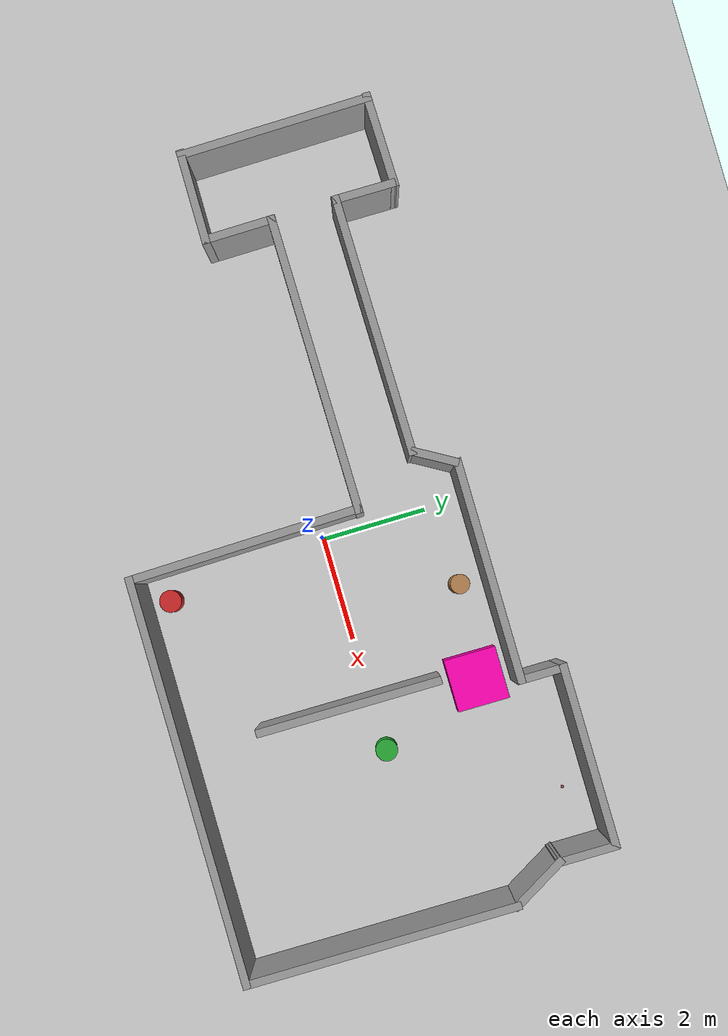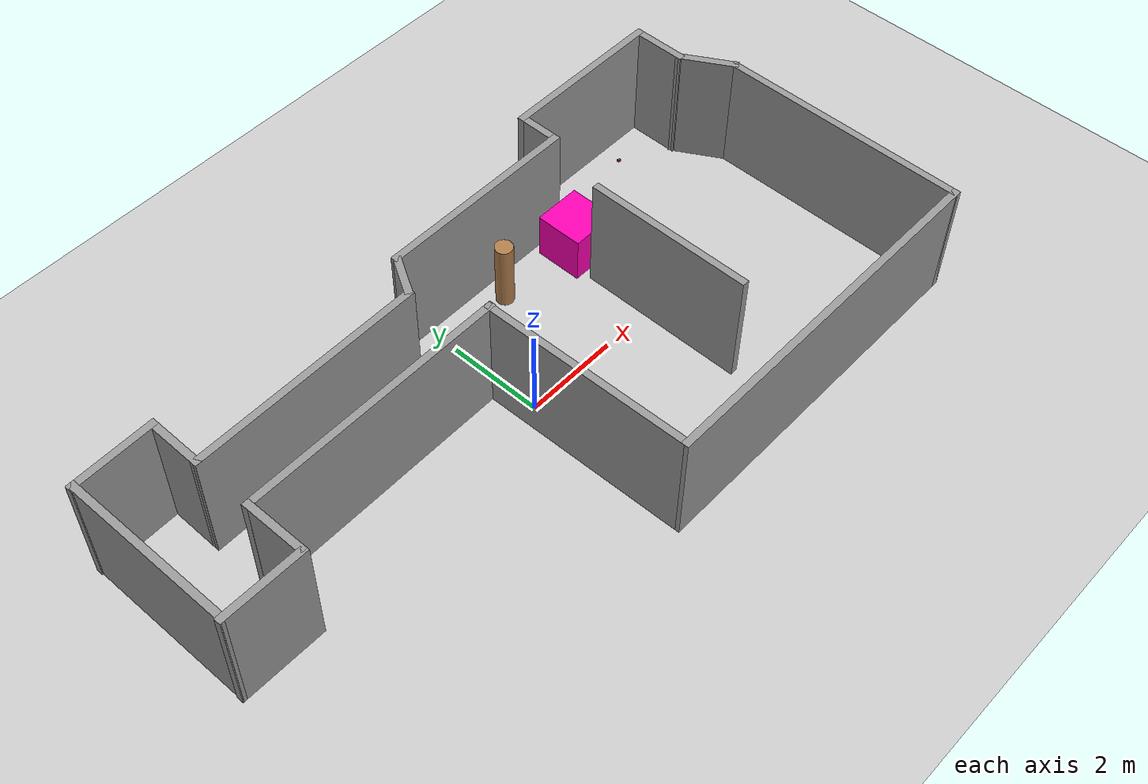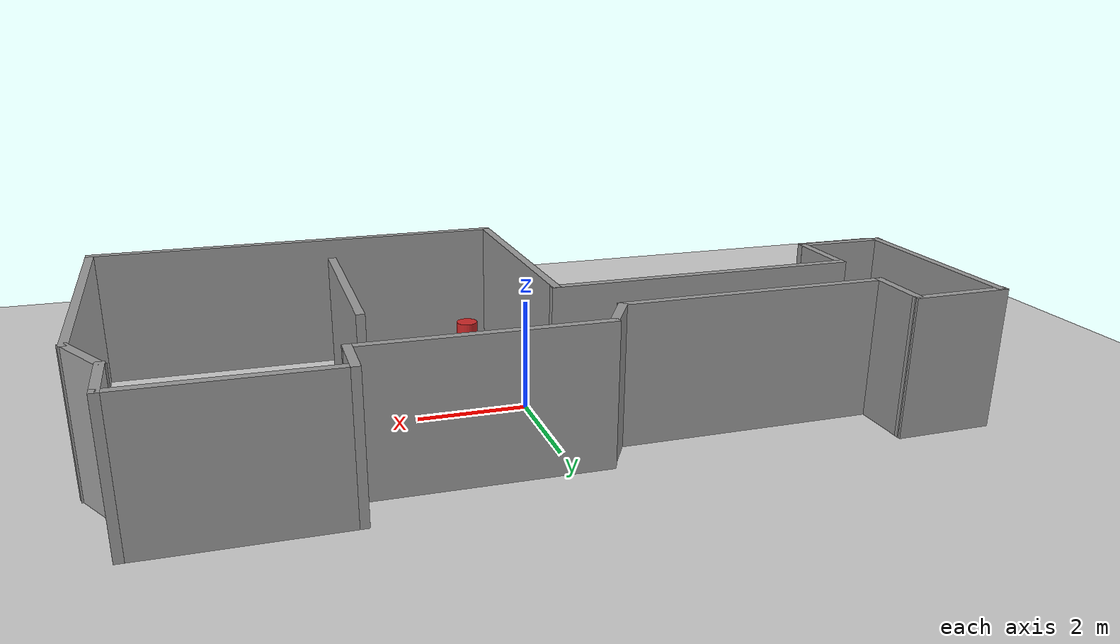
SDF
<sdf version="1.7">
 <world name="default">
  <model name="ground_plane">
   <static>1</static>
   <link name="link">
    <collision name="collision">
     <geometry><plane><normal>0 0 1</normal><size>100 100</size></plane></geometry>
     <surface><friction><ode><mu>100</mu><mu2>50</mu2></ode></friction></surface>
    </collision>
    <visual name="visual">
     <cast_shadows>0</cast_shadows>
     <geometry><plane><normal>0 0 1</normal><size>100 100</size></plane></geometry>
     <material>
      <script><uri>file://media/materials/scripts/gazebo.material</uri><name>Gazebo/Grey</name></script>
     </material>
    </visual>
   </link>
  </model>
  <model name="room_walls">
   <link name="Wall_1">
    <collision name="Wall_1_Collision">
     <geometry><box><size>1.2 0.15 2.5</size></box></geometry>
     <pose>0 0 1.25 0 -0 0</pose>
    </collision>
    <visual name="Wall_1_Visual">
     <pose>0 0 1.25 0 -0 0</pose>
     <geometry><box><size>1.2 0.15 2.5</size></box></geometry>
     <material>
      <script><uri>file://media/materials/scripts/gazebo.material</uri><name>Gazebo/Grey</name></script>
      <ambient>1 1 1 1</ambient>
     </material>
     <meta><layer>0</layer></meta>
    </visual>
    <pose>-5.79107 2.49368 0 0 -0 1.5708</pose>
   </link>
   <link name="Wall_2">
    <collision name="Wall_2_Collision">
     <geometry><box><size>1.79256 0.15 2.5</size></box></geometry>
     <pose>0 0 1.25 0 -0 0</pose>
    </collision>
    <visual name="Wall_2_Visual">
     <pose>0 0 1.25 0 -0 0</pose>
     <geometry><box><size>1.79256 0.15 2.5</size></box></geometry>
     <material>
      <script><uri>file://media/materials/scripts/gazebo.material</uri><name>Gazebo/Grey</name></script>
      <ambient>1 1 1 1</ambient>
     </material>
     <meta><layer>0</layer></meta>
    </visual>
    <pose>-6.61216 3.04631 0 0 -0 -3.1203</pose>
   </link>
   <link name="Wall_3">
    <collision name="Wall_3_Collision">
     <geometry><box><size>3.68565 0.15 2.5</size></box></geometry>
     <pose>0 0 1.25 0 -0 0</pose>
    </collision>
    <visual name="Wall_3_Visual">
     <pose>0 0 1.25 0 -0 0</pose>
     <geometry><box><size>3.68565 0.15 2.5</size></box></geometry>
     <material>
      <script><uri>file://media/materials/scripts/gazebo.material</uri><name>Gazebo/Grey</name></script>
      <ambient>1 1 1 1</ambient>
     </material>
     <meta><layer>0</layer></meta>
    </visual>
    <pose>-7.38434 1.26123 0 0 -0 -1.5545</pose>
   </link>
   <link name="Wall_4">
    <collision name="Wall_4_Collision">
     <geometry><box><size>1.77744 0.15 2.5</size></box></geometry>
     <pose>0 0 1.25 0 -0 0</pose>
    </collision>
    <visual name="Wall_4_Visual">
     <pose>0 0 1.25 0 -0 0</pose>
     <geometry><box><size>1.77744 0.15 2.5</size></box></geometry>
     <material>
      <script><uri>file://media/materials/scripts/gazebo.material</uri><name>Gazebo/Grey</name></script>
      <ambient>1 1 1 1</ambient>
     </material>
     <meta><layer>0</layer></meta>
    </visual>
    <pose>-6.56193 -0.508986 0 0 -0 -0.003224</pose>
   </link>
   <link name="Wall_5">
    <collision name="Wall_5_Collision">
     <geometry><box><size>1.35672 0.15 2.5</size></box></geometry>
     <pose>0 0 1.25 0 -0 0</pose>
    </collision>
    <visual name="Wall_5_Visual">
     <pose>0 0 1.25 0 -0 0</pose>
     <geometry><box><size>1.35672 0.15 2.5</size></box></geometry>
     <material>
      <script><uri>file://media/materials/scripts/gazebo.material</uri><name>Gazebo/Grey</name></script>
      <ambient>1 1 1 1</ambient>
     </material>
     <meta><layer>0</layer></meta>
    </visual>
    <pose>-5.75827 0.136795 0 0 -0 1.5846</pose>
   </link>
   <link name="Wall_6">
    <collision name="Wall_6_Collision">
     <geometry><box><size>5.64664 0.15 2.5</size></box></geometry>
     <pose>0 0 1.25 0 -0 0</pose>
    </collision>
    <visual name="Wall_6_Visual">
     <pose>0 0 1.25 0 -0 0</pose>
     <geometry><box><size>5.64664 0.15 2.5</size></box></geometry>
     <material>
      <script><uri>file://media/materials/scripts/gazebo.material</uri><name>Gazebo/Grey</name></script>
      <ambient>1 1 1 1</ambient>
     </material>
     <meta><layer>0</layer></meta>
    </visual>
    <pose>-3.02009 0.766397 0 0 -0 0.007796</pose>
   </link>
   <link name="Wall_7">
    <collision name="Wall_7_Collision">
     <geometry><box><size>4.38998 0.15 2.5</size></box></geometry>
     <pose>0 0 1.25 0 -0 0</pose>
    </collision>
    <visual name="Wall_7_Visual">
     <pose>0 0 1.25 0 -0 0</pose>
     <geometry><box><size>4.38998 0.15 2.5</size></box></geometry>
     <material>
      <script><uri>file://media/materials/scripts/gazebo.material</uri><name>Gazebo/Grey</name></script>
      <ambient>1 1 1 1</ambient>
     </material>
     <meta><layer>0</layer></meta>
    </visual>
    <pose>-0.242291 -1.34162 0 0 -0 -1.54891</pose>
   </link>
   <link name="Wall_8">
    <collision name="Wall_8_Collision">
     <geometry><box><size>7.75 0.15 2.5</size></box></geometry>
     <pose>0 0 1.25 0 -0 0</pose>
    </collision>
    <visual name="Wall_8_Visual">
     <pose>0 0 1.25 0 -0 0</pose>
     <geometry><box><size>7.75 0.15 2.5</size></box></geometry>
     <material>
      <script><uri>file://media/materials/scripts/gazebo.material</uri><name>Gazebo/Grey</name></script>
      <ambient>1 1 1 1</ambient>
     </material>
     <meta><layer>0</layer></meta>
    </visual>
    <pose>3.60739 -3.55107 0 0 -0 0</pose>
   </link>
   <link name="Wall_9">
    <collision name="Wall_9_Collision">
     <geometry><box><size>5.25 0.15 2.5</size></box></geometry>
     <pose>0 0 1.25 0 -0 0</pose>
    </collision>
    <visual name="Wall_9_Visual">
     <pose>0 0 1.25 0 -0 0</pose>
     <geometry><box><size>5.25 0.15 2.5</size></box></geometry>
     <material>
      <script><uri>file://media/materials/scripts/gazebo.material</uri><name>Gazebo/Grey</name></script>
      <ambient>1 1 1 1</ambient>
     </material>
     <meta><layer>0</layer></meta>
    </visual>
    <pose>7.40739 -1.00107 0 0 -0 1.5708</pose>
   </link>
   <link name="Wall_10">
    <collision name="Wall_10_Collision">
     <geometry><box><size>1.25 0.15 2.5</size></box></geometry>
     <pose>0 0 1.25 0 -0 0</pose>
    </collision>
    <visual name="Wall_10_Visual">
     <pose>0 0 1.25 0 -0 0</pose>
     <geometry><box><size>1.25 0.15 2.5</size></box></geometry>
     <material>
      <script><uri>file://media/materials/scripts/gazebo.material</uri><name>Gazebo/Grey</name></script>
      <ambient>1 1 1 1</ambient>
     </material>
     <meta><layer>0</layer></meta>
    </visual>
    <pose>7.13239 2.02524 0 0 -0 2.0944</pose>
   </link>
   <link name="Wall_11">
    <collision name="Wall_11_Collision">
     <geometry><box><size>1.20114 0.15 2.5</size></box></geometry>
     <pose>0 0 1.25 0 -0 0</pose>
    </collision>
    <visual name="Wall_11_Visual">
     <pose>0 0 1.25 0 -0 0</pose>
     <geometry><box><size>1.20114 0.15 2.5</size></box></geometry>
     <material>
      <script><uri>file://media/materials/scripts/gazebo.material</uri><name>Gazebo/Grey</name></script>
      <ambient>1 1 1 1</ambient>
     </material>
     <meta><layer>0</layer></meta>
    </visual>
    <pose>6.85739 3.02713 0 0 -0 1.5708</pose>
   </link>
   <link name="Wall_12">
    <collision name="Wall_12_Collision">
     <geometry><box><size>3.5 0.15 2.5</size></box></geometry>
     <pose>0 0 1.25 0 -0 0</pose>
    </collision>
    <visual name="Wall_12_Visual">
     <pose>0 0 1.25 0 -0 0</pose>
     <geometry><box><size>3.5 0.15 2.5</size></box></geometry>
     <material>
      <script><uri>file://media/materials/scripts/gazebo.material</uri><name>Gazebo/Grey</name></script>
      <ambient>1 1 1 1</ambient>
     </material>
     <meta><layer>0</layer></meta>
    </visual>
    <pose>5.18239 3.55269 0 0 -0 3.14159</pose>
   </link>
   <link name="Wall_13">
    <collision name="Wall_13_Collision">
     <geometry><box><size>0.951136 0.15 2.5</size></box></geometry>
     <pose>0 0 1.25 0 -0 0</pose>
    </collision>
    <visual name="Wall_13_Visual">
     <pose>0 0 1.25 0 -0 0</pose>
     <geometry><box><size>0.951136 0.15 2.5</size></box></geometry>
     <material>
      <script><uri>file://media/materials/scripts/gazebo.material</uri><name>Gazebo/Grey</name></script>
      <ambient>1 1 1 1</ambient>
     </material>
     <meta><layer>0</layer></meta>
    </visual>
    <pose>3.50739 3.15213 0 0 -0 -1.5708</pose>
   </link>
   <link name="Wall_14">
    <collision name="Wall_14_Collision">
     <geometry><box><size>4.25 0.15 2.5</size></box></geometry>
     <pose>0 0 1.25 0 -0 0</pose>
    </collision>
    <visual name="Wall_14_Visual">
     <pose>0 0 1.25 0 -0 0</pose>
     <geometry><box><size>4.25 0.15 2.5</size></box></geometry>
     <material>
      <script><uri>file://media/materials/scripts/gazebo.material</uri><name>Gazebo/Grey</name></script>
      <ambient>1 1 1 1</ambient>
     </material>
     <meta><layer>0</layer></meta>
    </visual>
    <pose>1.45739 2.75156 0 0 -0 3.14159</pose>
   </link>
   <link name="Wall_15">
    <collision name="Wall_15_Collision">
     <geometry><box><size>0.9 0.15 2.5</size></box></geometry>
     <pose>0 0 1.25 0 -0 0</pose>
    </collision>
    <visual name="Wall_15_Visual">
     <pose>0 0 1.25 0 -0 0</pose>
     <geometry><box><size>0.9 0.15 2.5</size></box></geometry>
     <material>
      <script><uri>file://media/materials/scripts/gazebo.material</uri><name>Gazebo/Grey</name></script>
      <ambient>1 1 1 1</ambient>
     </material>
     <meta><layer>0</layer></meta>
    </visual>
    <pose>-0.805112 2.3835 0 0 -0 -2.0944</pose>
   </link>
   <link name="Wall_16">
    <collision name="Wall_16_Collision">
     <geometry><box><size>4.92373 0.15 2.5</size></box></geometry>
     <pose>0 0 1.25 0 -0 0</pose>
    </collision>
    <visual name="Wall_16_Visual">
     <pose>0 0 1.25 0 -0 0</pose>
     <geometry><box><size>4.92373 0.15 2.5</size></box></geometry>
     <material>
      <script><uri>file://media/materials/scripts/gazebo.material</uri><name>Gazebo/Grey</name></script>
      <ambient>1 1 1 1</ambient>
     </material>
     <meta><layer>0</layer></meta>
    </visual>
    <pose>-3.40434 1.98962 0 0 -0 -3.13077</pose>
   </link>
   <link name="Wall_17">
    <collision name="Wall_17_Collision">
     <geometry><box><size>3.5 0.15 2.5</size></box></geometry>
     <pose>0 0 1.25 0 -0 0</pose>
    </collision>
    <visual name="Wall_17_Visual">
     <pose>0 0 1.25 0 -0 0</pose>
     <geometry><box><size>3.5 0.15 2.5</size></box></geometry>
     <material>
      <script><uri>file://media/materials/scripts/gazebo.material</uri><name>Gazebo/Grey</name></script>
      <ambient>1 1 1 1</ambient>
     </material>
     <meta><layer>0</layer></meta>
    </visual>
    <pose>3.10875 -0.378342 0 0 -0 -1.5708</pose>
   </link>
   <static>1</static>
  </model>
  <model name="construction_cone_4">
   <pose>1.54493 2.21479 0.728544 0 -0 -2.6e-05</pose>
   <link name="link">
    <inertial>
     <mass>1</mass>
     <inertia><ixx>0.145833</ixx><ixy>0</ixy><ixz>0</ixz><iyy>0.145833</iyy><iyz>0</iyz><izz>0.125</izz></inertia>
    </inertial>
    <collision name="collision">
     <geometry><cylinder><radius>0.183096</radius><length>1.4571</length></cylinder></geometry>
    </collision>
    <visual name="visual">
     <geometry><cylinder><radius>0.183096</radius><length>1.4571</length></cylinder></geometry>
     <material>
      <script><name>Gazebo/Wood</name><uri>file://media/materials/scripts/gazebo.material</uri></script>
     </material>
    </visual>
   </link>
  </model>
  <model name="poly_7">
   <pose>0.041878 0.036189 0.025 4e-06 -7e-06 0.015235</pose>
   <link name="poly_7_link">
    <inertial>
     <mass>0.7</mass>
     <inertia>
      <ixx>0.00016667</ixx>
      <ixy>0</ixy>
      <ixz>0</ixz>
      <iyy>0.00016667</iyy>
      <iyz>0</iyz>
      <izz>0.00016667</izz>
     </inertia>
    </inertial>
    <collision name="collision"><geometry><box><size>0.05 0.05 0.05</size></box></geometry></collision>
    <visual name="visual">
     <geometry><box><size>0.05 0.05 0.05</size></box></geometry>
     <material>
      <script><name>Gazebo/Red</name><uri>file://media/materials/scripts/gazebo.material</uri></script>
     </material>
    </visual>
   </link>
   <link name="tag7">
    <pose>0 0 0.025 0 -0 0</pose>
    <collision name="collision"><geometry><box><size>0.0325 0.0325 0.0001</size></box></geometry></collision>
    <visual name="visual">
     <cast_shadows>0</cast_shadows>
     <geometry><box><size>0.0325 0.0325 0.0001</size></box></geometry>
     <material>
      <script>
       <uri>model://artag/materials/scripts</uri>
       <uri>model://artag/materials/textures</uri>
       <name>material/artag7</name>
      </script>
     </material>
    </visual>
    <inertial>
     <inertia><ixx>0.0001</ixx><ixy>0</ixy><ixz>0</ixz><iyy>0.0001</iyy><iyz>0</iyz><izz>0.0001</izz></inertia>
     <mass>0.1</mass>
    </inertial>
   </link>
   <joint name="poly_7_tag7" type="fixed"><parent>poly_7_link</parent><child>tag7</child></joint>
  </model>
  <model name="place_table_r">
   <static>1</static>
   <pose>0.343307 -3.08766 0.345 0 -0 0</pose>
   <link name="link">
    <inertial>
     <mass>1</mass>
     <inertia><ixx>0.145833</ixx><ixy>0</ixy><ixz>0</ixz><iyy>0.145833</iyy><iyz>0</iyz><izz>0.125</izz></inertia>
    </inertial>
    <collision name="collision">
     <geometry><cylinder><radius>0.21</radius><length>0.69</length></cylinder></geometry>
    </collision>
    <visual name="visual">
     <geometry><cylinder><radius>0.21</radius><length>0.69</length></cylinder></geometry>
     <material>
      <script><name>Gazebo/Red</name><uri>file://media/materials/scripts/gazebo.material</uri></script>
     </material>
    </visual>
   </link>
  </model>
  <model name="place_table_g">
   <static>1</static>
   <pose>4.16791 0.040706 0.345 0 -0 0</pose>
   <link name="link">
    <inertial>
     <mass>1</mass>
     <inertia><ixx>0.145833</ixx><ixy>0</ixy><ixz>0</ixz><iyy>0.145833</iyy><iyz>0</iyz><izz>0.125</izz></inertia>
    </inertial>
    <collision name="collision">
     <geometry><cylinder><radius>0.21</radius><length>0.69</length></cylinder></geometry>
    </collision>
    <visual name="visual">
     <geometry><cylinder><radius>0.21</radius><length>0.69</length></cylinder></geometry>
     <material>
      <script><name>Gazebo/Green</name><uri>file://media/materials/scripts/gazebo.material</uri></script>
     </material>
    </visual>
   </link>
  </model>
  <model name="poly_8">
   <pose>5.81381 3.05208 0.025 -4e-06 -7e-06 0.015213</pose>
   <link name="poly_8_link">
    <inertial>
     <mass>0.7</mass>
     <inertia>
      <ixx>0.00016667</ixx>
      <ixy>0</ixy>
      <ixz>0</ixz>
      <iyy>0.00016667</iyy>
      <iyz>0</iyz>
      <izz>0.00016667</izz>
     </inertia>
    </inertial>
    <collision name="collision"><geometry><box><size>0.05 0.05 0.05</size></box></geometry></collision>
    <visual name="visual">
     <geometry><box><size>0.05 0.05 0.05</size></box></geometry>
     <material>
      <script><name>Gazebo/Red</name><uri>file://media/materials/scripts/gazebo.material</uri></script>
     </material>
    </visual>
   </link>
   <link name="tag8">
    <pose>0 0 0.025 0 -0 0</pose>
    <collision name="collision"><geometry><box><size>0.0325 0.0325 0.0001</size></box></geometry></collision>
    <visual name="visual">
     <cast_shadows>0</cast_shadows>
     <geometry><box><size>0.0325 0.0325 0.0001</size></box></geometry>
     <material>
      <script>
       <uri>model://artag/materials/scripts</uri>
       <uri>model://artag/materials/textures</uri>
       <name>material/artag8</name>
      </script>
     </material>
    </visual>
    <inertial>
     <inertia><ixx>0.0001</ixx><ixy>0</ixy><ixz>0</ixz><iyy>0.0001</iyy><iyz>0</iyz><izz>0.0001</izz></inertia>
     <mass>0.1</mass>
    </inertial>
   </link>
   <joint name="poly_8_tag8" type="fixed"><parent>poly_8_link</parent><child>tag8</child></joint>
  </model>
  <model name="poly_9">
   <pose>5.81381 3.05208 0.025 -4e-06 -7e-06 0.015213</pose>
   <link name="poly_9_link">
    <inertial>
     <mass>0.7</mass>
     <inertia>
      <ixx>0.00016667</ixx>
      <ixy>0</ixy>
      <ixz>0</ixz>
      <iyy>0.00016667</iyy>
      <iyz>0</iyz>
      <izz>0.00016667</izz>
     </inertia>
    </inertial>
    <collision name="collision"><geometry><box><size>0.05 0.05 0.05</size></box></geometry></collision>
    <visual name="visual">
     <geometry><box><size>0.05 0.05 0.05</size></box></geometry>
     <material>
      <script><name>Gazebo/Red</name><uri>file://media/materials/scripts/gazebo.material</uri></script>
     </material>
    </visual>
   </link>
   <link name="tag9">
    <pose>0 0 0.025 0 -0 0</pose>
    <collision name="collision"><geometry><box><size>0.0325 0.0325 0.0001</size></box></geometry></collision>
    <visual name="visual">
     <cast_shadows>0</cast_shadows>
     <geometry><box><size>0.0325 0.0325 0.0001</size></box></geometry>
     <material>
      <script>
       <uri>model://artag/materials/scripts</uri>
       <uri>model://artag/materials/textures</uri>
       <name>material/artag9</name>
      </script>
     </material>
    </visual>
    <inertial>
     <inertia><ixx>0.0001</ixx><ixy>0</ixy><ixz>0</ixz><iyy>0.0001</iyy><iyz>0</iyz><izz>0.0001</izz></inertia>
     <mass>0.1</mass>
    </inertial>
   </link>
   <joint name="poly_9_tag9" type="fixed"><parent>poly_9_link</parent><child>tag9</child></joint>
  </model>
  <model name="unit_box_purple">
   <link name="link">
    <inertial>
     <mass>1</mass>
     <inertia>
      <ixx>0.166667</ixx>
      <ixy>0</ixy>
      <ixz>0</ixz>
      <iyy>0.166667</iyy>
      <iyz>0</iyz>
      <izz>0.166667</izz>
     </inertia>
    </inertial>
    <visual name="visual">
     <geometry><box><size>1 1 1</size></box></geometry>
     <material>
      <script><name>Gazebo/Grey</name><uri>file://media/materials/scripts/gazebo.material</uri></script>
      <shader type="pixel"><normal_map>__default__</normal_map></shader>
      <ambient>1 0 0.7 1</ambient>
      <diffuse>0.7 0.7 0.7 1</diffuse>
      <specular>0.31 0.01 0.01 1</specular>
      <emissive>0.8 0 0.7 1</emissive>
     </material>
    </visual>
    <collision name="collision">
     <geometry><box><size>1 1 1</size></box></geometry>
     <surface>
      <friction>
       <ode><mu>1</mu><mu2>1</mu2><fdir1>0 0 0</fdir1><slip1>0</slip1><slip2>0</slip2></ode>
       <torsional>
        <coefficient>1</coefficient>
        <patch_radius>0</patch_radius>
        <surface_radius>0</surface_radius>
        <use_patch_radius>1</use_patch_radius>
        <ode><slip>0</slip></ode>
       </torsional>
      </friction>
      <bounce><restitution_coefficient>0</restitution_coefficient><threshold>1e+06</threshold></bounce>
      <contact>
       <collide_without_contact>0</collide_without_contact>
       <collide_without_contact_bitmask>1</collide_without_contact_bitmask>
       <collide_bitmask>1</collide_bitmask>
       <ode>
        <soft_cfm>0</soft_cfm>
        <soft_erp>0.2</soft_erp>
        <kp>1e+13</kp>
        <kd>1</kd>
        <max_vel>0.01</max_vel>
        <min_depth>0</min_depth>
       </ode>
       <bullet>
        <split_impulse>1</split_impulse>
        <split_impulse_penetration_threshold>-0.01</split_impulse_penetration_threshold>
        <soft_cfm>0</soft_cfm>
        <soft_erp>0.2</soft_erp>
        <kp>1e+13</kp>
        <kd>1</kd>
       </bullet>
      </contact>
     </surface>
    </collision>
   </link>
   <static>0</static>
   <pose>3.34454 2.03052 0.499995 1e-05 -0 0</pose>
  </model>
 </world>
</sdf>
